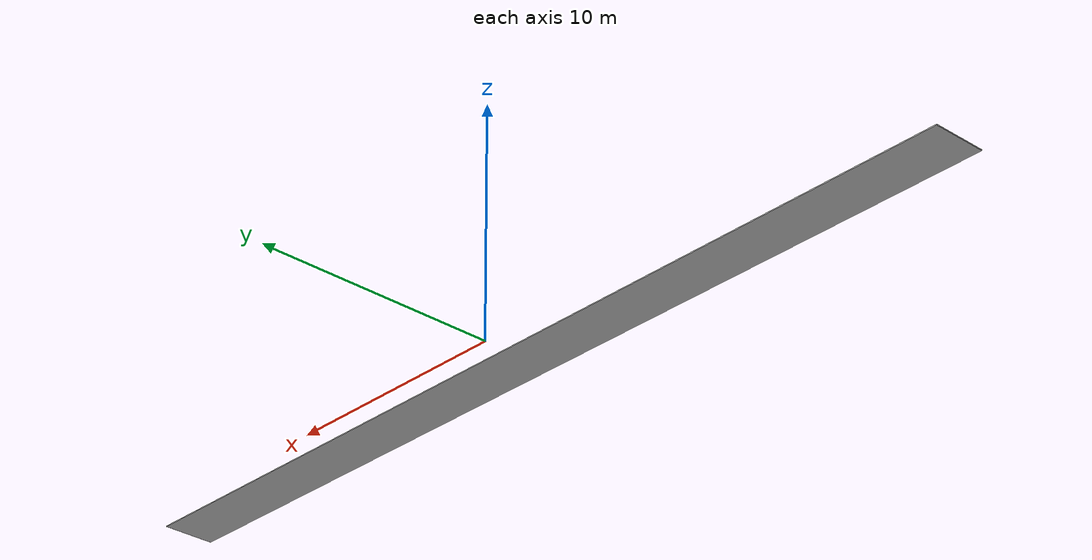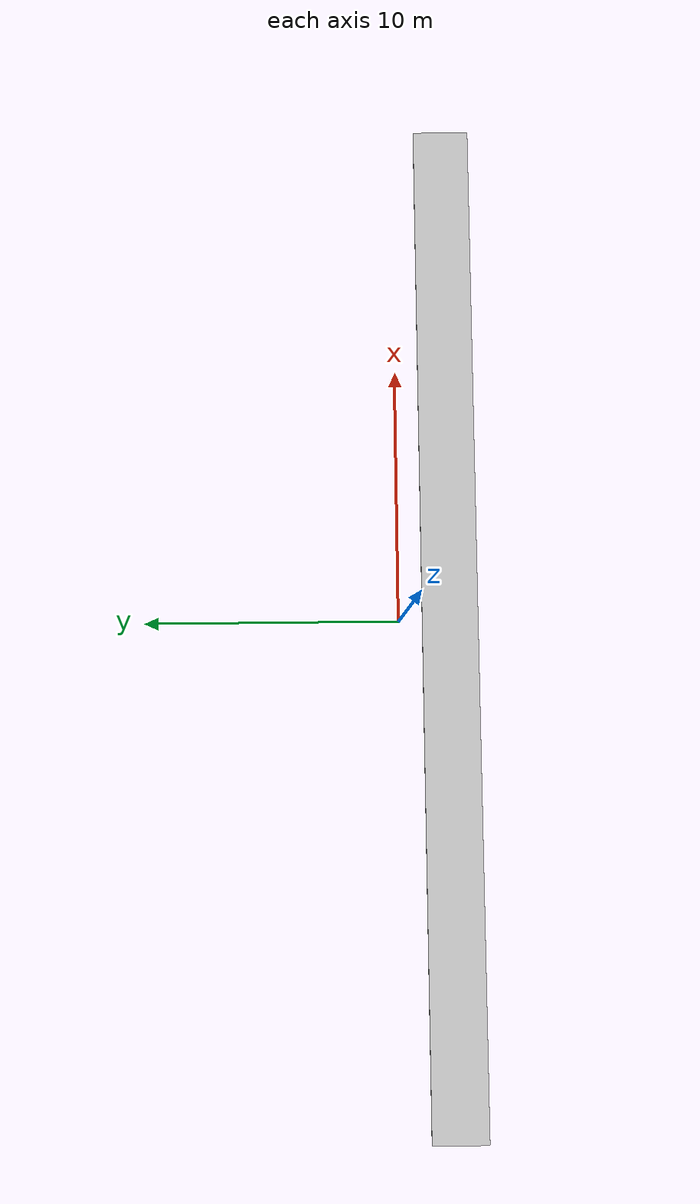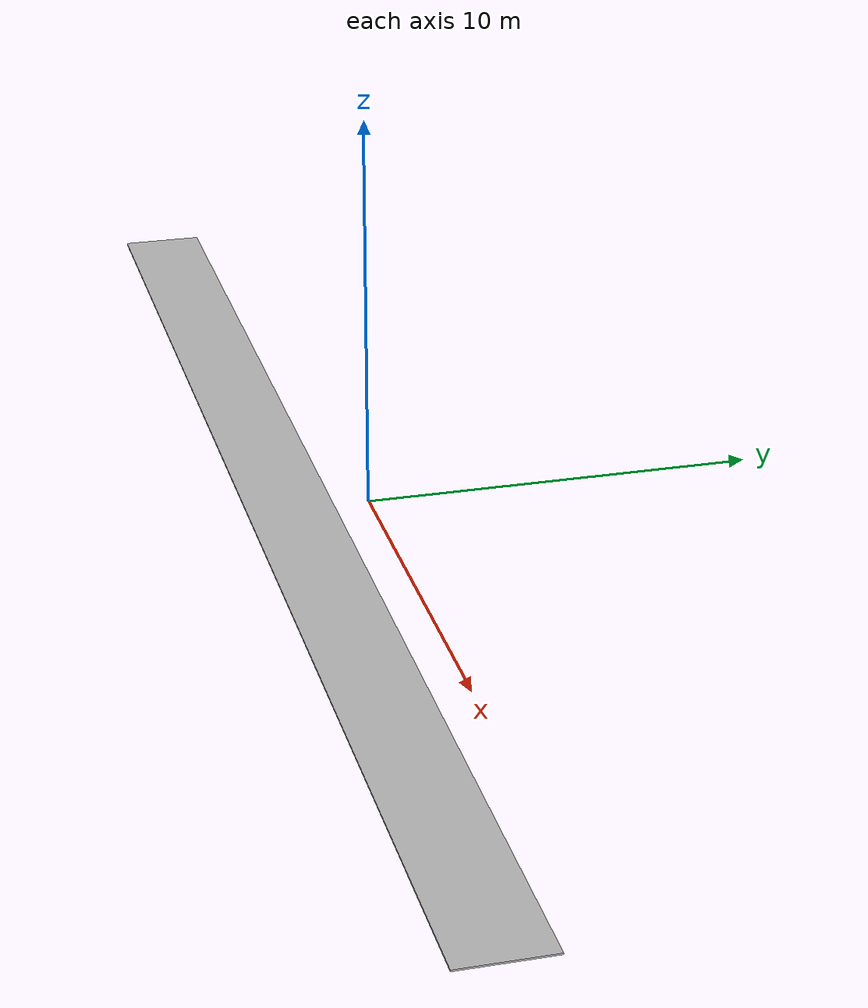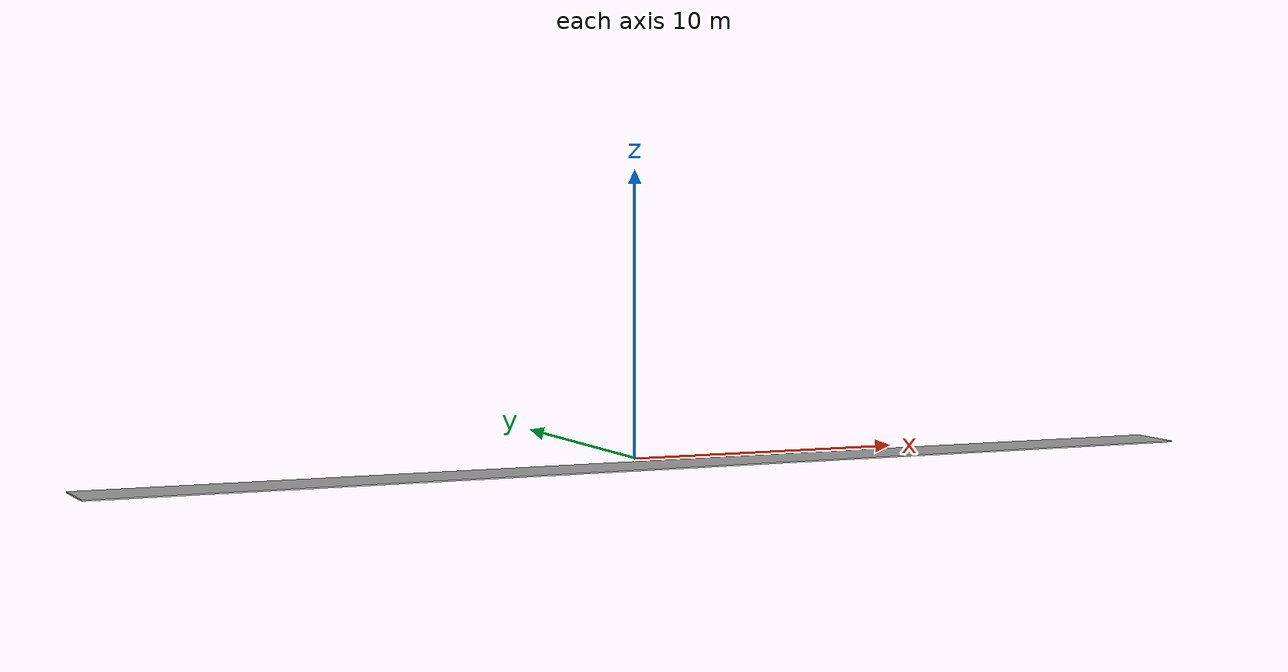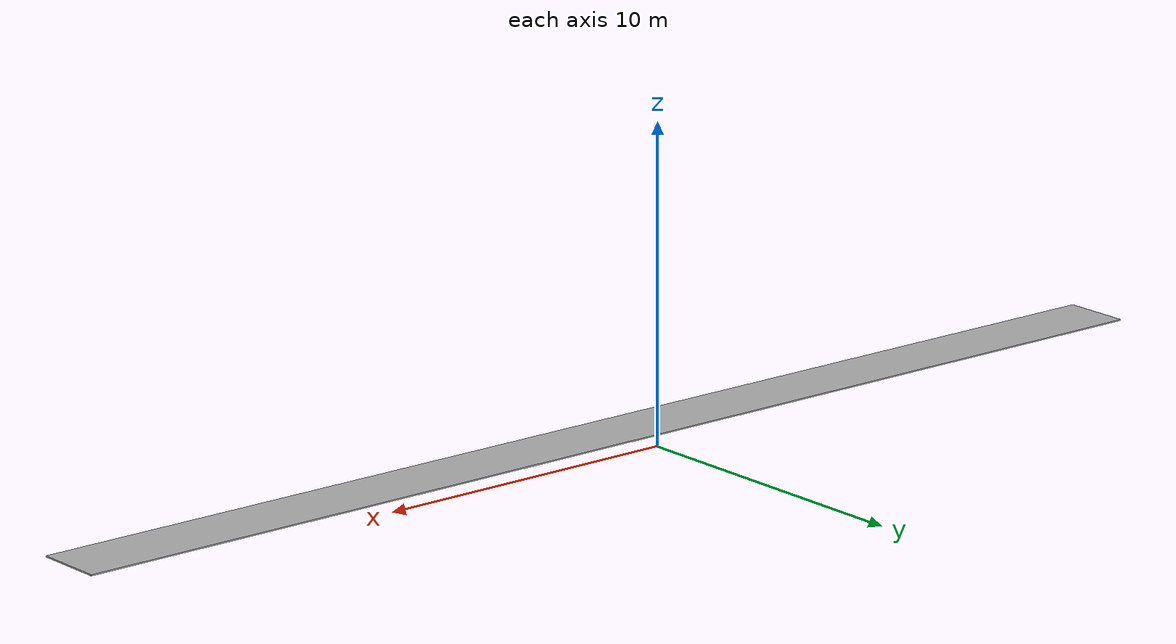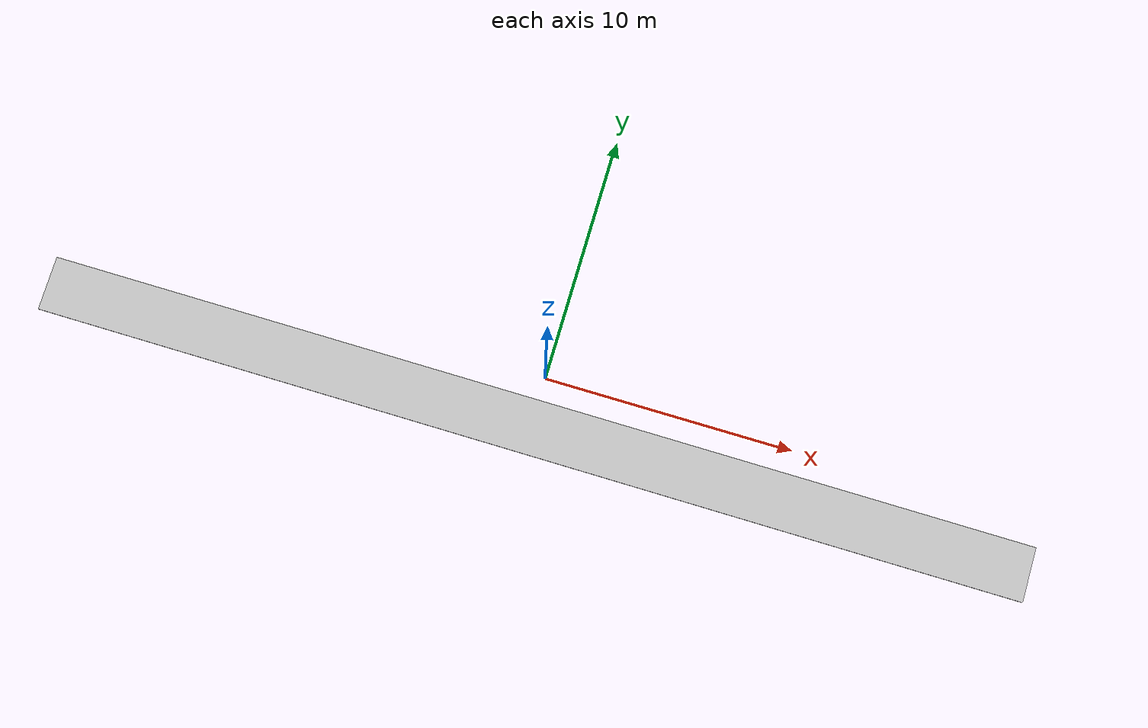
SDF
<?xml version="1.0" ?>
<sdf version="1.4">
  <model name="(DS) Straight Road - 200m">
    <static>true</static>
    <link name="link">
      <inertial>
        <pose>0 0 0 0 0 0</pose>
        <mass>1</mass>
        <inertia>
          <ixx>1</ixx>
          <iyy>1</iyy>
          <izz>1</izz>
          <ixy>0</ixy>
          <ixz>0</ixz>
        </inertia>
      </inertial>
      <collision name="collision">
        <geometry>
          <mesh>
            <uri>model://ds_straight_road_200m/meshes/straight_road_200m.dae</uri>
          </mesh>
        </geometry>
      </collision>
      <visual name="visual">
        <geometry>
          <mesh>
<scale> 0.2 0.2 0.2 </scale>
            <uri>model://ds_straight_road_200m/meshes/straight_road_200m.dae</uri>
          </mesh>
        </geometry>
      </visual>
    </link>
  </model>
</sdf>
